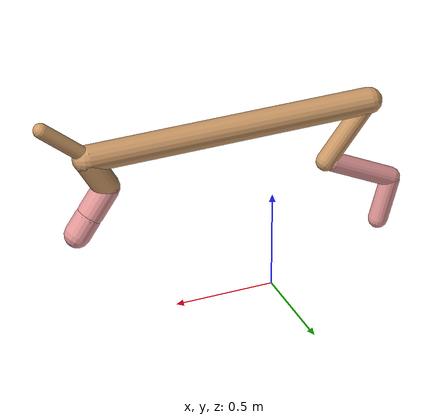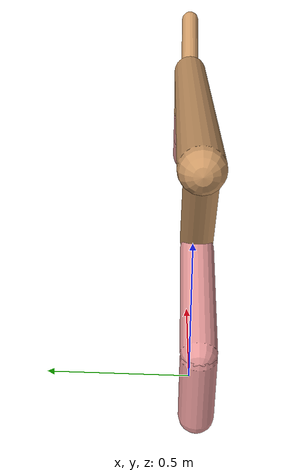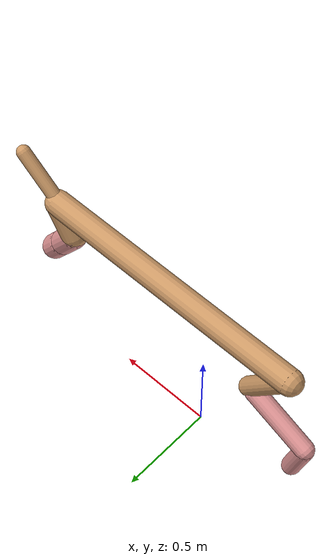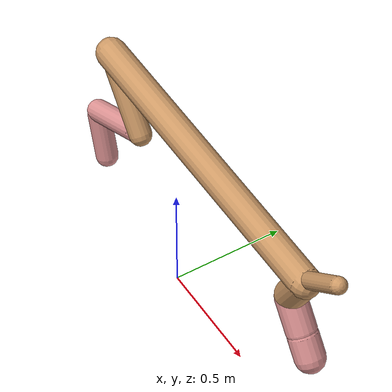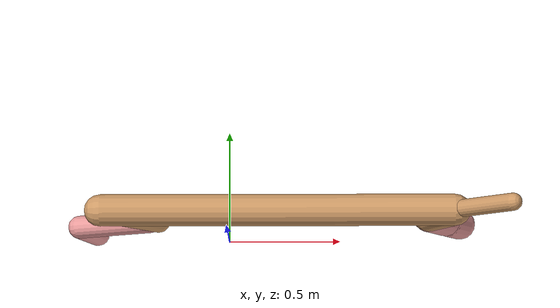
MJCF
<mujoco model="cheetah">
  <compiler angle="radian" coordinate="local" inertiafromgeom="true" settotalmass="14" />
  <default>
    <joint armature=".1" damping=".01" limited="true" solimplimit="0 .8 .03" solreflimit=".02 1" stiffness="8" />
    <geom conaffinity="0" condim="3" contype="1" friction="0.8 .1 .1" rgba="0.8 0.6 .4 1" solimp="0.0 0.8 0.01" solref="0.02 1" />
    <motor ctrllimited="true" ctrlrange="-1 1" />
  </default>
  <size nstack="300000" nuser_geom="1" />
  <option gravity="0 0 -9.81" timestep="0.01" />
  <worldbody>
    <body name="torso" pos="0.0 0.0 0.9096693346859751">
      <joint armature="0" axis="1 0 0" damping="0" limited="false" name="ignorex" pos="0 0 0" stiffness="0" type="slide" />
      <joint armature="0" axis="0 0 1" damping="0" limited="false" name="ignorez" pos="0 0 0" stiffness="0" type="slide" />
      <joint armature="0" axis="0 1 0" damping="0" limited="false" name="ignorey" pos="0 0 0" stiffness="0" type="hinge" />
      <geom fromto="-0.5 0.0 0.0 0.9418966556355731 0.0 0.0" name="torso" size="0.0657515922760485" type="capsule" />
      <geom axisangle="0 1 0 .87" name="head" pos="1.0418966556355733 0.0 0.1" size="0.03596360194559938 0.15" type="capsule" />

      <body name="bthigh" pos="-.5 0 0">
        <joint axis="0 1 0" damping="6" name="bthigh" pos="0 0 0" range="-.52 1.05" stiffness="240" type="hinge" />
        <geom axisangle="0 1 0 -3.8" name="bthigh" pos="0.11570886371935936 0.0 -0.15042152283516716" size="0.04867598385032817 0.17076445214361557" type="capsule" />
        <body name="bshin" pos="0.1914177274387187 0.0 -0.2908430456703343">
          <joint axis="0 1 0" damping="4.5" name="bshin" pos="0 0 0" range="-.785 .785" stiffness="180" type="hinge" />
          <geom axisangle="0 1 0 -2.03" name="bshin" pos="-0.16383906195703365 0.0 -0.08191953097851683" rgba="0.9 0.6 0.6 1" size="0.04867598385032817 0.1766528815278782" type="capsule" />
          <body name="bfoot" pos="-0.3276781239140673 0.0 -0.16383906195703365">
            <joint axis="0 1 0" damping="3" name="bfoot" pos="0 0 0" range="-.4 .785" stiffness="120" type="hinge" />
            <geom axisangle="0 1 0 -.27" name="bfoot" pos="0.034935074899273236 0.0 -0.11295674217431681" rgba="0.9 0.6 0.6 1" size="0.04867598385032817 0.11070247242413701" type="capsule" />
            <inertial mass="10" />
          </body>
        </body>
      </body>
      <body name="fthigh" pos="0.9418966556355732 0.0 0.0">
        <joint axis="0 1 0" damping="4.5" name="fthigh" pos="0 0 0" range="-1.5 0.8" stiffness="180" type="hinge" />
        <geom axisangle="0 1 0 .52" name="fthigh" pos="-0.04989554608158897 0.0 -0.0855352218541525" size="0.06441194774117448 0.0931" type="capsule" />
        <body name="fshin" pos="-0.09979109216317794 0.0 -0.171070443708305">
          <joint axis="0 1 0" damping="3" name="fshin" pos="0 0 0" range="-1.2 1.1" stiffness="120" type="hinge" />
          <geom axisangle="0 1 0 -.6" name="fshin" pos="0.046381400387749405 0.0 -0.06422040053688378" rgba="0.9 0.6 0.6 1" size="0.06441194774117448 0.07419999999999999" type="capsule" />
          <body name="ffoot" pos="0.09276280077549881 0.0 -0.12844080107376757">
            <joint axis="0 1 0" damping="1.5" name="ffoot" pos="0 0 0" range="-3.1 -0.3" stiffness="60" type="hinge" />
            <geom axisangle="0 1 0 -.6" name="ffoot" pos="0.033644090582416526 0.0 -0.05233525201709238" rgba="0.9 0.6 0.6 1" size="0.06441194774117448 0.049" type="capsule" />
            <inertial mass="10" />
          </body>
        </body>
      </body>
    </body>
  </worldbody>
  <actuator>
    <motor gear="120" joint="bthigh" name="bthigh" />
    <motor gear="90" joint="bshin" name="bshin" />
    <motor gear="60" joint="bfoot" name="bfoot" />
    <motor gear="120" joint="fthigh" name="fthigh" />
    <motor gear="60" joint="fshin" name="fshin" />
    <motor gear="30" joint="ffoot" name="ffoot" />
  </actuator>
</mujoco>
